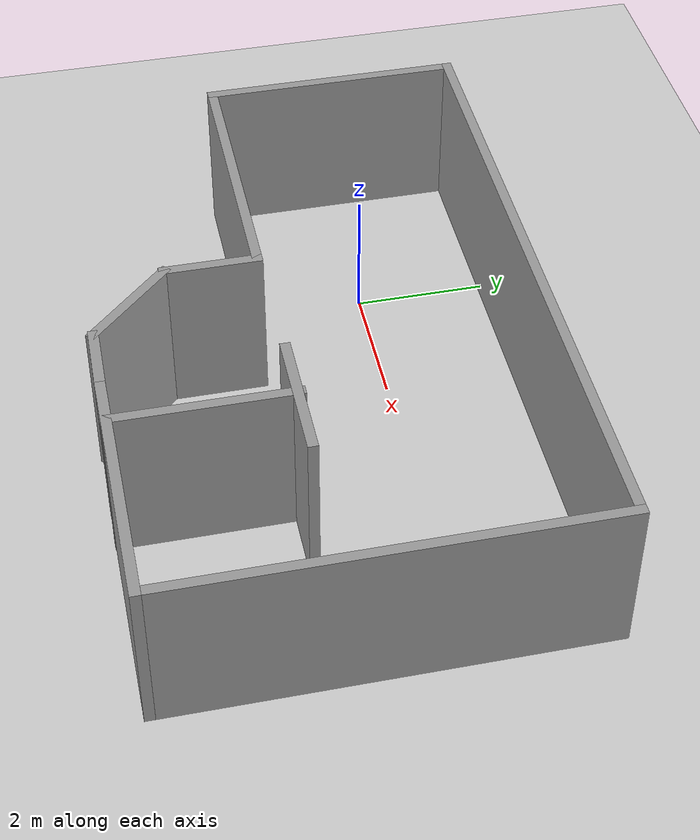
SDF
<sdf version="1.7">
 <world name="default">
  <light name="sun" type="directional">
   <pose>0 0 10 0 -0 0</pose>
   <diffuse>0.8 0.8 0.8 1</diffuse>
   <specular>0.2 0.2 0.2 1</specular>
   <attenuation>
    <range>1000</range>
    <constant>0.9</constant>
    <linear>0.01</linear>
    <quadratic>0.001</quadratic>
   </attenuation>
   <direction>-0.5 0.1 -0.9</direction>
   <spot><inner_angle>0</inner_angle><outer_angle>0</outer_angle><falloff>0</falloff></spot>
  </light>
  <model name="ground_plane">
   <static>1</static>
   <link name="link">
    <collision name="collision">
     <geometry><plane><normal>0 0 1</normal><size>100 100</size></plane></geometry>
     <surface><friction><ode><mu>100</mu><mu2>50</mu2></ode></friction></surface>
    </collision>
    <visual name="visual">
     <cast_shadows>0</cast_shadows>
     <geometry><plane><normal>0 0 1</normal><size>100 100</size></plane></geometry>
     <material>
      <script><uri>file://media/materials/scripts/gazebo.material</uri><name>Gazebo/Grey</name></script>
     </material>
    </visual>
   </link>
  </model>
  <gravity>0 0 -9.8</gravity>
  <magnetic_field>6e-06 2.3e-05 -4.2e-05</magnetic_field>
  <atmosphere type="adiabatic"/>
  <physics type="ode">
   <max_step_size>0.001</max_step_size>
   <real_time_factor>1</real_time_factor>
   <real_time_update_rate>1000</real_time_update_rate>
  </physics>
  <scene><ambient>0.4 0.4 0.4 1</ambient><background>0.7 0.7 0.7 1</background><shadows>1</shadows></scene>
  <audio><device>default</device></audio>
  <spherical_coordinates>
   <surface_model>EARTH_WGS84</surface_model>
   <latitude_deg>0</latitude_deg>
   <longitude_deg>0</longitude_deg>
   <elevation>0</elevation>
   <heading_deg>0</heading_deg>
  </spherical_coordinates>
  <model name="Untitled2">
   <pose>2.303 -1.16122 0 0 -0 0</pose>
   <link name="Wall_0">
    <collision name="Wall_0_Collision">
     <geometry><box><size>4 0.15 2.5</size></box></geometry>
     <pose>0 0 1.25 0 -0 0</pose>
    </collision>
    <visual name="Wall_0_Visual">
     <pose>0 0 1.25 0 -0 0</pose>
     <geometry><box><size>4 0.15 2.5</size></box></geometry>
     <material>
      <script><uri>file://media/materials/scripts/gazebo.material</uri><name>Gazebo/Grey</name></script>
      <ambient>1 1 1 1</ambient>
     </material>
     <meta><layer>0</layer></meta>
    </visual>
    <pose>-4.925 1.25622 0 0 -0 1.5708</pose>
   </link>
   <link name="Wall_13">
    <collision name="Wall_13_Collision">
     <geometry><box><size>1.5 0.15 2.5</size></box></geometry>
     <pose>0 0 1.25 0 -0 0</pose>
    </collision>
    <visual name="Wall_13_Visual">
     <pose>0 0 1.25 0 -0 0</pose>
     <geometry><box><size>1.5 0.15 2.5</size></box></geometry>
     <material>
      <script><uri>file://media/materials/scripts/gazebo.material</uri><name>Gazebo/Grey</name></script>
      <ambient>1 1 1 1</ambient>
     </material>
     <meta><layer>0</layer></meta>
    </visual>
    <pose>-0.825 -1.34378 0 0 -0 -1.5708</pose>
   </link>
   <link name="Wall_14">
    <collision name="Wall_14_Collision">
     <geometry><box><size>1.75 0.15 2.5</size></box></geometry>
     <pose>0 0 1.25 0 -0 0</pose>
    </collision>
    <visual name="Wall_14_Visual">
     <pose>0 0 1.25 0 -0 0</pose>
     <geometry><box><size>1.75 0.15 2.5</size></box></geometry>
     <material>
      <script><uri>file://media/materials/scripts/gazebo.material</uri><name>Gazebo/Grey</name></script>
      <ambient>1 1 1 1</ambient>
     </material>
     <meta><layer>0</layer></meta>
    </visual>
    <pose>-0.259315 -2.58447 0 0 -0 -0.785398</pose>
   </link>
   <link name="Wall_15">
    <collision name="Wall_15_Collision">
     <geometry><box><size>1.1688 0.15 2.5</size></box></geometry>
     <pose>0 0 1.25 0 -0 0</pose>
    </collision>
    <visual name="Wall_15_Visual">
     <pose>0 0 1.25 0 -0 0</pose>
     <geometry><box><size>1.1688 0.15 2.5</size></box></geometry>
     <material>
      <script><uri>file://media/materials/scripts/gazebo.material</uri><name>Gazebo/Grey</name></script>
      <ambient>1 1 1 1</ambient>
     </material>
     <meta><layer>0</layer></meta>
    </visual>
    <pose>0.815685 -3.15947 0 0 -0 -0.018286</pose>
   </link>
   <link name="Wall_17">
    <collision name="Wall_17_Collision">
     <geometry><box><size>2 0.15 2.5</size></box></geometry>
     <pose>0 0 1.25 0 -0 0</pose>
    </collision>
    <visual name="Wall_17_Visual">
     <pose>0 0 1.25 0 -0 0</pose>
     <geometry><box><size>2 0.15 2.5</size></box></geometry>
     <material>
      <script><uri>file://media/materials/scripts/gazebo.material</uri><name>Gazebo/Grey</name></script>
      <ambient>1 1 1 1</ambient>
     </material>
     <meta><layer>0</layer></meta>
    </visual>
    <pose>2.0185 -0.612282 0 0 -0 0</pose>
   </link>
   <link name="Wall_19">
    <collision name="Wall_19_Collision">
     <geometry><box><size>2.75 0.15 2.5</size></box></geometry>
     <pose>0 0 1.25 0 -0 0</pose>
    </collision>
    <visual name="Wall_19_Visual">
     <pose>0 0 1.25 0 -0 0</pose>
     <geometry><box><size>2.75 0.15 2.5</size></box></geometry>
     <material>
      <script><uri>file://media/materials/scripts/gazebo.material</uri><name>Gazebo/Grey</name></script>
      <ambient>1 1 1 1</ambient>
     </material>
     <meta><layer>0</layer></meta>
    </visual>
    <pose>1.9675 -1.87778 0 0 -0 -1.5708</pose>
   </link>
   <link name="Wall_2">
    <collision name="Wall_2_Collision">
     <geometry><box><size>4.25 0.15 2.5</size></box></geometry>
     <pose>0 0 1.25 0 -0 0</pose>
    </collision>
    <visual name="Wall_2_Visual">
     <pose>0 0 1.25 0 -0 0</pose>
     <geometry><box><size>4.25 0.15 2.5</size></box></geometry>
     <material>
      <script><uri>file://media/materials/scripts/gazebo.material</uri><name>Gazebo/Grey</name></script>
      <ambient>1 1 1 1</ambient>
     </material>
     <meta><layer>0</layer></meta>
    </visual>
    <pose>-2.875 -0.668782 0 0 -0 0</pose>
   </link>
   <link name="Wall_4">
    <collision name="Wall_4_Collision">
     <geometry><box><size>10 0.15 2.5</size></box></geometry>
     <pose>0 0 1.25 0 -0 0</pose>
    </collision>
    <visual name="Wall_4_Visual">
     <pose>0 0 1.25 0 -0 0</pose>
     <geometry><box><size>10 0.15 2.5</size></box></geometry>
     <material>
      <script><uri>file://media/materials/scripts/gazebo.material</uri><name>Gazebo/Grey</name></script>
      <ambient>1 1 1 1</ambient>
     </material>
     <meta><layer>0</layer></meta>
    </visual>
    <pose>-0 3.18122 0 0 -0 0</pose>
   </link>
   <link name="Wall_5">
    <collision name="Wall_5_Collision">
     <geometry><box><size>6.5 0.15 2.5</size></box></geometry>
     <pose>0 0 1.25 0 -0 0</pose>
    </collision>
    <visual name="Wall_5_Visual">
     <pose>0 0 1.25 0 -0 0</pose>
     <geometry><box><size>6.5 0.15 2.5</size></box></geometry>
     <material>
      <script><uri>file://media/materials/scripts/gazebo.material</uri><name>Gazebo/Grey</name></script>
      <ambient>1 1 1 1</ambient>
     </material>
     <meta><layer>0</layer></meta>
    </visual>
    <pose>4.925 0.006218 0 0 -0 -1.5708</pose>
   </link>
   <link name="Wall_9">
    <collision name="Wall_9_Collision">
     <geometry><box><size>3.75 0.15 2.5</size></box></geometry>
     <pose>0 0 1.25 0 -0 0</pose>
    </collision>
    <visual name="Wall_9_Visual">
     <pose>0 0 1.25 0 -0 0</pose>
     <geometry><box><size>3.75 0.15 2.5</size></box></geometry>
     <material>
      <script><uri>file://media/materials/scripts/gazebo.material</uri><name>Gazebo/Grey</name></script>
      <ambient>1 1 1 1</ambient>
     </material>
     <meta><layer>0</layer></meta>
    </visual>
    <pose>3.125 -3.16878 0 0 -0 3.14159</pose>
   </link>
   <static>1</static>
  </model>
 </world>
</sdf>
